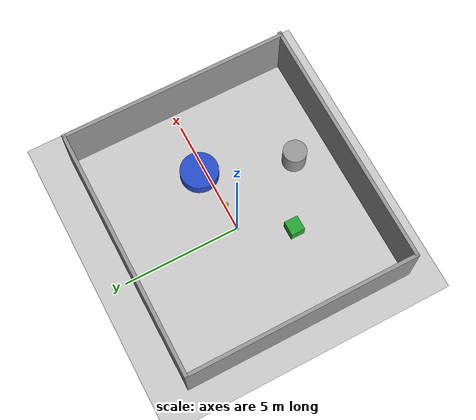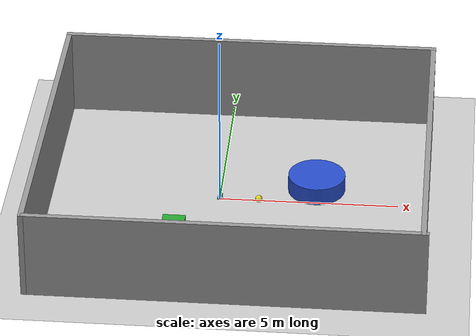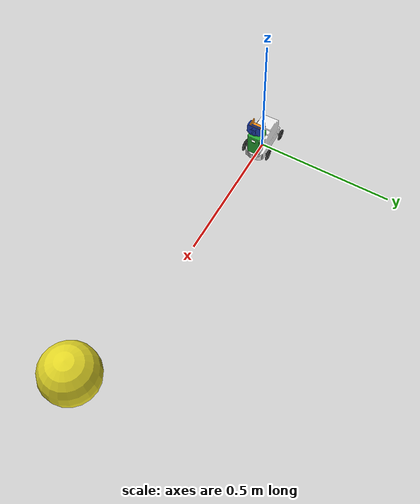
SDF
<sdf version="1.7">
 <world name="default">
  <light name="sun" type="directional">
   <pose>0 0 10 0 -0 0</pose>
   <diffuse>0.8 0.8 0.8 1</diffuse>
   <specular>0.2 0.2 0.2 1</specular>
   <attenuation>
    <range>1000</range>
    <constant>0.9</constant>
    <linear>0.01</linear>
    <quadratic>0.001</quadratic>
   </attenuation>
   <direction>-0.5 0.1 -0.9</direction>
   <spot><inner_angle>0</inner_angle><outer_angle>0</outer_angle><falloff>0</falloff></spot>
  </light>
  <model name="ground_plane">
   <static>1</static>
   <link name="link">
    <collision name="collision">
     <geometry><plane><normal>0 0 1</normal><size>100 100</size></plane></geometry>
     <surface><friction><ode><mu>100</mu><mu2>50</mu2></ode></friction></surface>
    </collision>
    <visual name="visual">
     <cast_shadows>0</cast_shadows>
     <geometry><plane><normal>0 0 1</normal><size>100 100</size></plane></geometry>
     <material>
      <script><uri>file://media/materials/scripts/gazebo.material</uri><name>Gazebo/Grey</name></script>
     </material>
    </visual>
   </link>
  </model>
  <gravity>0 0 -9.8</gravity>
  <magnetic_field>6e-06 2.3e-05 -4.2e-05</magnetic_field>
  <atmosphere type="adiabatic"/>
  <physics type="ode">
   <max_step_size>0.001</max_step_size>
   <real_time_factor>1</real_time_factor>
   <real_time_update_rate>1000</real_time_update_rate>
  </physics>
  <scene><ambient>0.4 0.4 0.4 1</ambient><background>0.7 0.7 0.7 1</background><shadows>1</shadows></scene>
  <audio><device>default</device></audio>
  <spherical_coordinates>
   <surface_model>EARTH_WGS84</surface_model>
   <latitude_deg>0</latitude_deg>
   <longitude_deg>0</longitude_deg>
   <elevation>0</elevation>
   <heading_deg>0</heading_deg>
  </spherical_coordinates>
  <model name="minihouse">
   <pose>0.521714 -0.22273 0 0 -0 0</pose>
   <link name="Wall_14">
    <collision name="Wall_14_Collision">
     <geometry><box><size>10.75 0.15 2.5</size></box></geometry>
     <pose>0 0 1.25 0 -0 0</pose>
    </collision>
    <visual name="Wall_14_Visual">
     <pose>0 0 1.25 0 -0 0</pose>
     <geometry><box><size>10.75 0.15 2.5</size></box></geometry>
     <material>
      <script><uri>file://media/materials/scripts/gazebo.material</uri><name>Gazebo/Grey</name></script>
      <ambient>1 1 1 1</ambient>
     </material>
     <meta><layer>0</layer></meta>
    </visual>
    <pose>-0.035378 4.84484 0 0 -0 0</pose>
   </link>
   <link name="Wall_17">
    <collision name="Wall_17_Collision">
     <geometry><box><size>9.83968 0.15 2.5</size></box></geometry>
     <pose>0 0 1.25 0 -0 0</pose>
    </collision>
    <visual name="Wall_17_Visual">
     <pose>0 0 1.25 0 -0 0</pose>
     <geometry><box><size>9.83968 0.15 2.5</size></box></geometry>
     <material>
      <script><uri>file://media/materials/scripts/gazebo.material</uri><name>Gazebo/Grey</name></script>
      <ambient>1 1 1 1</ambient>
     </material>
     <meta><layer>0</layer></meta>
    </visual>
    <pose>5.26462 0 0 0 -0 -1.5708</pose>
   </link>
   <link name="Wall_18">
    <collision name="Wall_18_Collision">
     <geometry><box><size>10.75 0.15 2.5</size></box></geometry>
     <pose>0 0 1.25 0 -0 0</pose>
    </collision>
    <visual name="Wall_18_Visual">
     <pose>0 0 1.25 0 -0 0</pose>
     <geometry><box><size>10.75 0.15 2.5</size></box></geometry>
     <material>
      <script><uri>file://media/materials/scripts/gazebo.material</uri><name>Gazebo/Grey</name></script>
      <ambient>1 1 1 1</ambient>
     </material>
     <meta><layer>0</layer></meta>
    </visual>
    <pose>0.035379 -4.84484 0 0 -0 3.14159</pose>
   </link>
   <link name="Wall_19">
    <collision name="Wall_19_Collision">
     <geometry><box><size>9.83968 0.15 2.5</size></box></geometry>
     <pose>0 0 1.25 0 -0 0</pose>
    </collision>
    <visual name="Wall_19_Visual">
     <pose>0 0 1.25 0 -0 0</pose>
     <geometry><box><size>9.83968 0.15 2.5</size></box></geometry>
     <material>
      <script><uri>file://media/materials/scripts/gazebo.material</uri><name>Gazebo/Grey</name></script>
      <ambient>1 1 1 1</ambient>
     </material>
     <meta><layer>0</layer></meta>
    </visual>
    <pose>-5.33538 0 0 0 -0 1.5708</pose>
   </link>
   <static>1</static>
  </model>
  <model name="unit_cylinder">
   <pose>1.54016 -3.46963 0.499998 3e-06 4e-06 -0</pose>
   <link name="link">
    <inertial>
     <mass>1</mass>
     <inertia><ixx>0.145833</ixx><ixy>0</ixy><ixz>0</ixz><iyy>0.145833</iyy><iyz>0</iyz><izz>0.125</izz></inertia>
    </inertial>
    <collision name="collision">
     <geometry><cylinder><radius>0.5</radius><length>1</length></cylinder></geometry>
    </collision>
    <visual name="visual">
     <geometry><cylinder><radius>0.5</radius><length>1</length></cylinder></geometry>
     <material>
      <script><name>Gazebo/Grey</name><uri>file://media/materials/scripts/gazebo.material</uri></script>
     </material>
    </visual>
   </link>
  </model>
  <model name="jetbot">
   <link name="base_link">
    <inertial>
     <pose>-0.006525 0.000838 0.022571 0 -0 0</pose>
     <mass>1</mass>
     <inertia>
      <ixx>0.034058</ixx>
      <ixy>0</ixy>
      <ixz>0</ixz>
      <iyy>0.071921</iyy>
      <iyz>0</iyz>
      <izz>0.072689</izz>
     </inertia>
    </inertial>
    <collision name="base_link_collision">
     <geometry><mesh><scale>1 1 1</scale><uri>model://modelo_robot/meshes/chassis.STL</uri></mesh></geometry>
     <surface>
      <contact><ode><kp>100000</kp><kd>1</kd></ode></contact>
      <friction><ode><mu>200</mu><mu2>200</mu2></ode></friction>
     </surface>
    </collision>
    <visual name="base_link_visual">
     <geometry><mesh><scale>1 1 1</scale><uri>model://modelo_robot/meshes/chassis.STL</uri></mesh></geometry>
     <material>
      <script><name>Gazebo/White</name><uri>file://media/materials/scripts/gazebo.material</uri></script>
     </material>
    </visual>
   </link>
   <joint name="der_atras_joint" type="revolute">
    <pose relative_to="base_link">-0.052704 -0.046801 -0.015 1.5708 -0 0</pose>
    <parent>base_link</parent>
    <child>der_atras_link</child>
    <axis>
     <xyz>0 0 1</xyz>
     <limit><effort>100</effort><velocity>100</velocity><lower>-1e+16</lower><upper>1e+16</upper></limit>
     <dynamics>
      <damping>0.1</damping>
      <friction>0.1</friction>
      <spring_reference>0</spring_reference>
      <spring_stiffness>0</spring_stiffness>
     </dynamics>
    </axis>
   </joint>
   <link name="der_atras_link">
    <pose relative_to="der_atras_joint">0 0 0 0 -0 0</pose>
    <inertial>
     <mass>0.15591</mass>
     <inertia><ixx>0.7966</ixx><ixy>0</ixy><ixz>0</ixz><iyy>0.40074</iyy><iyz>0</iyz><izz>0.40074</izz></inertia>
    </inertial>
    <collision name="der_atras_link_collision">
     <geometry>
      <mesh><scale>1 1 1</scale><uri>model://modelo_robot/meshes/der_atras_link.STL</uri></mesh>
     </geometry>
     <surface>
      <contact><ode><kp>1e+06</kp><kd>1</kd></ode></contact>
      <friction><ode><mu>200</mu><mu2>200</mu2></ode></friction>
     </surface>
    </collision>
    <visual name="der_atras_link_visual">
     <pose>0.1033 0 0 0 -0 0</pose>
     <geometry>
      <mesh><scale>1 1 1</scale><uri>model://modelo_robot/meshes/der_atras_link.STL</uri></mesh>
     </geometry>
     <material>
      <script><name>Gazebo/Black</name><uri>file://media/materials/scripts/gazebo.material</uri></script>
     </material>
    </visual>
   </link>
   <joint name="der_del_joint" type="revolute">
    <pose relative_to="base_link">0.050556 -0.046806 -0.015 1.5708 -0 0</pose>
    <parent>base_link</parent>
    <child>izq_del_link</child>
    <axis>
     <xyz>0 0 1</xyz>
     <limit><effort>100</effort><velocity>100</velocity><lower>-1e+16</lower><upper>1e+16</upper></limit>
     <dynamics>
      <damping>0.1</damping>
      <friction>0.1</friction>
      <spring_reference>0</spring_reference>
      <spring_stiffness>0</spring_stiffness>
     </dynamics>
    </axis>
   </joint>
   <link name="izq_del_link">
    <pose relative_to="der_del_joint">0 0 0 0 -0 0</pose>
    <inertial>
     <pose>-2.7756 6.9389 2.4896 0 -0 0</pose>
     <mass>0.15156</mass>
     <inertia><ixx>0.5053</ixx><ixy>0</ixy><ixz>0</ixz><iyy>0.5053</iyy><iyz>0</iyz><izz>0.98323</izz></inertia>
    </inertial>
    <collision name="izq_del_link_collision">
     <geometry><mesh><scale>1 1 1</scale><uri>model://modelo_robot/meshes/izq_del_link.STL</uri></mesh></geometry>
     <surface>
      <contact><ode><kp>100000</kp><kd>1</kd></ode></contact>
      <friction><ode><mu>200</mu><mu2>200</mu2></ode></friction>
     </surface>
    </collision>
    <visual name="izq_del_link_visual">
     <geometry><mesh><scale>1 1 1</scale><uri>model://modelo_robot/meshes/izq_del_link.STL</uri></mesh></geometry>
     <material>
      <script><name>Gazebo/Black</name><uri>file://media/materials/scripts/gazebo.material</uri></script>
     </material>
    </visual>
   </link>
   <joint name="izq_atras_joint" type="revolute">
    <pose relative_to="base_link">-0.052704 0.047799 -0.015 1.5707 -0 0</pose>
    <parent>base_link</parent>
    <child>izq_atras_link</child>
    <axis>
     <xyz>0 0 1</xyz>
     <limit><effort>100</effort><velocity>100</velocity><lower>-1e+16</lower><upper>1e+16</upper></limit>
     <dynamics>
      <damping>0.1</damping>
      <friction>0.1</friction>
      <spring_reference>0</spring_reference>
      <spring_stiffness>0</spring_stiffness>
     </dynamics>
    </axis>
   </joint>
   <link name="izq_atras_link">
    <pose relative_to="izq_atras_joint">0 0 0 0 -0 0</pose>
    <inertial>
     <mass>0.15591</mass>
     <inertia><ixx>0.7966</ixx><ixy>0</ixy><ixz>0</ixz><iyy>0.40074</iyy><iyz>0</iyz><izz>0.40074</izz></inertia>
    </inertial>
    <collision name="izq_atras_link_collision">
     <geometry>
      <mesh><scale>1 1 1</scale><uri>model://modelo_robot/meshes/izq_atras_link.STL</uri></mesh>
     </geometry>
     <surface>
      <contact><ode><kp>100000</kp><kd>1</kd></ode></contact>
      <friction><ode><mu>200</mu><mu2>200</mu2></ode></friction>
     </surface>
    </collision>
    <visual name="izq_atras_link_visual">
     <pose>0.10338 0 0.0946 0 -0 0</pose>
     <geometry>
      <mesh><scale>1 1 1</scale><uri>model://modelo_robot/meshes/izq_atras_link.STL</uri></mesh>
     </geometry>
     <material>
      <script><name>Gazebo/Black</name><uri>file://media/materials/scripts/gazebo.material</uri></script>
     </material>
    </visual>
   </link>
   <joint name="izq_del_joint" type="revolute">
    <pose relative_to="base_link">0.050556 0.047804 -0.015 1.5708 -0 0</pose>
    <parent>base_link</parent>
    <child>der_del_link</child>
    <axis>
     <xyz>0 0 1</xyz>
     <limit><effort>100</effort><velocity>100</velocity><lower>-1e+16</lower><upper>1e+16</upper></limit>
     <dynamics>
      <damping>0.1</damping>
      <friction>0.1</friction>
      <spring_reference>0</spring_reference>
      <spring_stiffness>0</spring_stiffness>
     </dynamics>
    </axis>
   </joint>
   <link name="der_del_link">
    <pose relative_to="izq_del_joint">0 0 0 0 -0 0</pose>
    <inertial>
     <pose>2.0817 -1.0408 -2.4896 0 -0 0</pose>
     <mass>0.1156</mass>
     <inertia><ixx>0.5053</ixx><ixy>0</ixy><ixz>0</ixz><iyy>0.5053</iyy><iyz>0</iyz><izz>0.98323</izz></inertia>
    </inertial>
    <collision name="der_del_link_collision">
     <geometry><mesh><scale>1 1 1</scale><uri>model://modelo_robot/meshes/der_del_link.STL</uri></mesh></geometry>
     <surface>
      <contact><ode><kp>1e+06</kp><kd>1</kd></ode></contact>
      <friction><ode><mu>200</mu><mu2>200</mu2></ode></friction>
     </surface>
    </collision>
    <visual name="der_del_link_visual">
     <geometry><mesh><scale>1 1 1</scale><uri>model://modelo_robot/meshes/der_del_link.STL</uri></mesh></geometry>
     <material>
      <script><name>Gazebo/Black</name><uri>file://media/materials/scripts/gazebo.material</uri></script>
     </material>
    </visual>
   </link>
   <joint name="prisma_joint" type="prismatic">
    <pose relative_to="base_link">0.067648 0 0.013 0 0 -3.14159</pose>
    <parent>base_link</parent>
    <child>prisma_link</child>
    <axis>
     <xyz>0 0 1</xyz>
     <limit><lower>0</lower><upper>0.025</upper><effort>100</effort><velocity>100</velocity></limit>
     <dynamics>
      <damping>10</damping>
      <friction>10</friction>
      <spring_reference>0</spring_reference>
      <spring_stiffness>0</spring_stiffness>
     </dynamics>
    </axis>
   </joint>
   <link name="prisma_link">
    <pose relative_to="prisma_joint">0 0 0 0 -0 0</pose>
    <inertial>
     <pose>0.003533 0 0.049545 0 -0 0</pose>
     <mass>0.65139</mass>
     <inertia><ixx>0.44437</ixx><ixy>0</ixy><ixz>0</ixz><iyy>0.43876</iyy><iyz>0</iyz><izz>0.14329</izz></inertia>
    </inertial>
    <collision name="prisma_link_collision">
     <geometry><mesh><scale>1 1 1</scale><uri>model://modelo_robot/meshes/prisma_link.STL</uri></mesh></geometry>
     <surface>
      <contact><ode><kp>100000</kp><kd>1</kd></ode></contact>
      <friction><ode><mu>200</mu><mu2>200</mu2></ode></friction>
     </surface>
    </collision>
    <visual name="prisma_link_visual">
     <pose>0 0 -0.035 0 -0 0</pose>
     <geometry><mesh><scale>1 1 1</scale><uri>model://modelo_robot/meshes/prisma_link.STL</uri></mesh></geometry>
     <material>
      <script><name>Gazebo/Green</name><uri>file://media/materials/scripts/gazebo.material</uri></script>
     </material>
    </visual>
   </link>
   <joint name="base_cam_joint" type="revolute">
    <pose relative_to="prisma_link">0.0125 0 0.1 0 -0 0.08</pose>
    <parent>prisma_link</parent>
    <child>base_cam_link</child>
    <axis>
     <xyz>0 0 1</xyz>
     <limit><lower>-1.5</lower><upper>1.5</upper><effort>100</effort><velocity>100</velocity></limit>
     <dynamics>
      <damping>0.1</damping>
      <friction>0.1</friction>
      <spring_reference>0</spring_reference>
      <spring_stiffness>0</spring_stiffness>
     </dynamics>
    </axis>
   </joint>
   <link name="base_cam_link">
    <pose relative_to="base_cam_joint">0 0 0 0 -0 0</pose>
    <inertial>
     <pose>0 -0 0.004984 0 -0 0</pose>
     <mass>0.4</mass>
     <inertia><ixx>0.32552</ixx><ixy>0</ixy><ixz>0</ixz><iyy>0.17362</iyy><iyz>0</iyz><izz>0.39268</izz></inertia>
    </inertial>
    <collision name="base_cam_link_collision">
     <geometry><mesh><scale>1 1 1</scale><uri>model://modelo_robot/meshes/base_cam_link.STL</uri></mesh></geometry>
     <surface>
      <contact><ode><kp>100000</kp><kd>1</kd></ode></contact>
      <friction><ode><mu>200</mu><mu2>200</mu2></ode></friction>
     </surface>
    </collision>
    <visual name="base_cam_link_visual">
     <pose>0 0 0 0 -0 0.25</pose>
     <geometry><mesh><scale>1 1 1</scale><uri>model://modelo_robot/meshes/base_cam_link.STL</uri></mesh></geometry>
     <material>
      <script><name>Gazebo/Orange</name><uri>file://media/materials/scripts/gazebo.material</uri></script>
     </material>
    </visual>
   </link>
   <joint name="cam_joint" type="revolute">
    <pose relative_to="base_cam_link">0 0 0.01 7e-06 -7e-06 2.99159</pose>
    <parent>base_cam_link</parent>
    <child>cam_link</child>
    <axis>
     <xyz>0 1 0</xyz>
     <limit><lower>-0.5</lower><upper>0.4</upper><effort>100</effort><velocity>100</velocity></limit>
     <dynamics>
      <damping>0.1</damping>
      <friction>0.1</friction>
      <spring_reference>0</spring_reference>
      <spring_stiffness>0</spring_stiffness>
     </dynamics>
    </axis>
   </joint>
   <link name="cam_link">
    <pose relative_to="cam_joint">0 0 0 0 -0 0</pose>
    <inertial>
     <pose>-0.014554 -0.00084 -1.4443 0 -0 0</pose>
     <mass>0.357</mass>
     <inertia><ixx>0.51693</ixx><ixy>0</ixy><ixz>0</ixz><iyy>0.60136</iyy><iyz>0</iyz><izz>0.239</izz></inertia>
    </inertial>
    <collision name="cam_link_collision">
     <geometry><mesh><scale>1 1 1</scale><uri>model://modelo_robot/meshes/cam_link.STL</uri></mesh></geometry>
     <surface>
      <contact><ode><kp>100000</kp><kd>1</kd></ode></contact>
      <friction><ode><mu>200</mu><mu2>200</mu2></ode></friction>
     </surface>
    </collision>
    <visual name="cam_link_visual">
     <pose>0.0005 0 0 1.5707 0 -3.08318</pose>
     <geometry><mesh><scale>1 1 1</scale><uri>model://modelo_robot/meshes/cam_link.STL</uri></mesh></geometry>
     <material>
      <script><name>Gazebo/Blue</name><uri>file://media/materials/scripts/gazebo.material</uri></script>
     </material>
    </visual>
    <sensor name="my_camera" type="depth">
     <update_rate>20</update_rate>
     <visualize>1</visualize>
     <camera name="cam">
      <horizontal_fov>1.39626</horizontal_fov>
      <image><width>640</width><height>480</height><format>R8B8G8</format></image>
      <clip><near>0.08</near><far>300</far></clip>
      <noise><type>gaussian</type><mean>0</mean><stddev>0.007</stddev></noise>
     </camera>
     <plugin name="camera_controller" filename="libgazebo_ros_camera.so">
      <frame_name>camera_link_optical</frame_name>
      <min_depth>0.1</min_depth>
      <max_depth>500</max_depth>
     </plugin>
    </sensor>
   </link>
   <plugin name="gazebo_ros_joint_state_publisher" filename="libgazebo_ros_joint_state_publisher.so">
    <update_rate>20</update_rate>
    <joint_name>prisma_joint</joint_name>
    <joint_name>base_cam_joint</joint_name>
    <joint_name>cam_joint</joint_name>
    <joint_name>der_del_joint</joint_name>
    <joint_name>izq_del_joint</joint_name>
    <joint_name>izq_atras_joint</joint_name>
    <joint_name>der_atras_joint</joint_name>
   </plugin>
   <plugin name="gazebo_ros_joint_pose_trajectory" filename="libgazebo_ros_joint_pose_trajectory.so">
    <update_rate>2</update_rate>
   </plugin>
   <plugin name="gazebo_ros_control" filename="libgazebo_ros_control.so">
    <robotNamespace>/</robotNamespace>
    <controlPeriod>0.001</controlPeriod>
    <legacyModeNS>0</legacyModeNS>
   </plugin>
   <static>0</static>
   <plugin name="two_wheeled_robot_diff_drive" filename="libgazebo_ros_diff_drive.so">
    <num_wheel_pairs>2</num_wheel_pairs>
    <left_joint>izq_del_joint</left_joint>
    <right_joint>der_del_joint</right_joint>
    <left_joint>izq_atras_joint</left_joint>
    <right_joint>der_atras_joint</right_joint>
    <wheel_separation>0.087</wheel_separation>
    <wheel_separation>0.087</wheel_separation>
    <wheel_diameter>0.04</wheel_diameter>
    <wheel_diameter>0.04</wheel_diameter>
    <max_wheel_torque>20</max_wheel_torque>
    <max_wheel_acceleration>1.0</max_wheel_acceleration>
    <publish_odom>1</publish_odom>
    <publish_odom_tf>1</publish_odom_tf>
    <publish_wheel_tf>1</publish_wheel_tf>
    <odometryTopic>odom</odometryTopic>
    <robot_base_frame>base_link</robot_base_frame>
    <odometryFrame>odom</odometryFrame>
    <commandTopic>cmd_vel</commandTopic>
   </plugin>
   <pose>-0.003706 -0.001627 0.036149 0.0006 -0.008403 0.023142</pose>
  </model>
  <model name="unit_sphere">
   <link name="link">
    <inertial>
     <mass>1</mass>
     <inertia><ixx>0.1</ixx><ixy>0</ixy><ixz>0</ixz><iyy>0.1</iyy><iyz>0</iyz><izz>0.1</izz></inertia>
    </inertial>
    <visual name="visual">
     <geometry><sphere><radius>0.1</radius></sphere></geometry>
     <material>
      <script><name>Gazebo/Yellow</name><uri>file://media/materials/scripts/gazebo.material</uri></script>
      <shader type="pixel"><normal_map>__default__</normal_map></shader>
      <ambient>1 1 0 1</ambient>
      <diffuse>1 1 0 1</diffuse>
      <emissive>0 0 0 1</emissive>
     </material>
    </visual>
    <collision name="collision">
     <geometry><sphere><radius>0.1</radius></sphere></geometry>
     <surface>
      <friction>
       <ode><mu>1</mu><mu2>1</mu2><fdir1>0 0 0</fdir1><slip1>0</slip1><slip2>0</slip2></ode>
       <torsional>
        <coefficient>1</coefficient>
        <patch_radius>0</patch_radius>
        <surface_radius>0</surface_radius>
        <use_patch_radius>1</use_patch_radius>
        <ode><slip>0</slip></ode>
       </torsional>
      </friction>
      <bounce><restitution_coefficient>0</restitution_coefficient><threshold>1e+06</threshold></bounce>
      <contact>
       <collide_without_contact>0</collide_without_contact>
       <collide_without_contact_bitmask>1</collide_without_contact_bitmask>
       <collide_bitmask>1</collide_bitmask>
       <ode>
        <soft_cfm>0</soft_cfm>
        <soft_erp>0.2</soft_erp>
        <kp>1e+13</kp>
        <kd>1</kd>
        <max_vel>0.01</max_vel>
        <min_depth>0</min_depth>
       </ode>
       <bullet>
        <split_impulse>1</split_impulse>
        <split_impulse_penetration_threshold>-0.01</split_impulse_penetration_threshold>
        <soft_cfm>0</soft_cfm>
        <soft_erp>0.2</soft_erp>
        <kp>1e+13</kp>
        <kd>1</kd>
       </bullet>
      </contact>
     </surface>
    </collision>
   </link>
   <static>0</static>
   <pose>1.0997 -0.066146 0.1 0 -0 0</pose>
  </model>
  <model name="unit_box">
   <link name="link">
    <inertial>
     <mass>1</mass>
     <inertia>
      <ixx>0.166667</ixx>
      <ixy>0</ixy>
      <ixz>0</ixz>
      <iyy>0.166667</iyy>
      <iyz>0</iyz>
      <izz>0.166667</izz>
     </inertia>
    </inertial>
    <visual name="visual">
     <geometry><box><size>0.63058 0.594016 0.514568</size></box></geometry>
     <material>
      <script><name>Gazebo/Green</name><uri>file://media/materials/scripts/gazebo.material</uri></script>
      <shader type="pixel"><normal_map>__default__</normal_map></shader>
      <ambient>0 1 0 1</ambient>
      <diffuse>0 1 0 1</diffuse>
      <specular>0.1 0.1 0.1 1</specular>
      <emissive>0 0 0 1</emissive>
     </material>
    </visual>
    <collision name="collision">
     <geometry><box><size>0.63058 0.594016 0.514568</size></box></geometry>
     <surface>
      <friction>
       <ode><mu>1</mu><mu2>1</mu2><fdir1>0 0 0</fdir1><slip1>0</slip1><slip2>0</slip2></ode>
       <torsional>
        <coefficient>1</coefficient>
        <patch_radius>0</patch_radius>
        <surface_radius>0</surface_radius>
        <use_patch_radius>1</use_patch_radius>
        <ode><slip>0</slip></ode>
       </torsional>
      </friction>
      <bounce><restitution_coefficient>0</restitution_coefficient><threshold>1e+06</threshold></bounce>
      <contact>
       <collide_without_contact>0</collide_without_contact>
       <collide_without_contact_bitmask>1</collide_without_contact_bitmask>
       <collide_bitmask>1</collide_bitmask>
       <ode>
        <soft_cfm>0</soft_cfm>
        <soft_erp>0.2</soft_erp>
        <kp>1e+13</kp>
        <kd>1</kd>
        <max_vel>0.01</max_vel>
        <min_depth>0</min_depth>
       </ode>
       <bullet>
        <split_impulse>1</split_impulse>
        <split_impulse_penetration_threshold>-0.01</split_impulse_penetration_threshold>
        <soft_cfm>0</soft_cfm>
        <soft_erp>0.2</soft_erp>
        <kp>1e+13</kp>
        <kd>1</kd>
       </bullet>
      </contact>
     </surface>
    </collision>
   </link>
   <static>0</static>
   <pose>-1.11316 -2.00602 0.257284 0 -0 0</pose>
  </model>
  <model name="unit_cylinder_0">
   <link name="link">
    <inertial>
     <mass>1</mass>
     <inertia><ixx>0.145833</ixx><ixy>0</ixy><ixz>0</ixz><iyy>0.145833</iyy><iyz>0</iyz><izz>0.125</izz></inertia>
    </inertial>
    <visual name="visual">
     <geometry><cylinder><radius>0.8</radius><length>0.5</length></cylinder></geometry>
     <material>
      <script><name>Gazebo/Blue</name><uri>file://media/materials/scripts/gazebo.material</uri></script>
      <shader type="pixel"><normal_map>__default__</normal_map></shader>
      <ambient>0 0.255 1 1</ambient>
      <diffuse>0 0 0 1</diffuse>
      <specular>0 0 0 1</specular>
      <emissive>0 0 0 1</emissive>
     </material>
    </visual>
    <collision name="collision">
     <geometry><cylinder><radius>0.8</radius><length>0.5</length></cylinder></geometry>
     <surface>
      <friction>
       <ode><mu>1</mu><mu2>1</mu2><fdir1>0 0 0</fdir1><slip1>0</slip1><slip2>0</slip2></ode>
       <torsional>
        <coefficient>1</coefficient>
        <patch_radius>0</patch_radius>
        <surface_radius>0</surface_radius>
        <use_patch_radius>1</use_patch_radius>
        <ode><slip>0</slip></ode>
       </torsional>
      </friction>
      <bounce><restitution_coefficient>0</restitution_coefficient><threshold>1e+06</threshold></bounce>
      <contact>
       <collide_without_contact>0</collide_without_contact>
       <collide_without_contact_bitmask>1</collide_without_contact_bitmask>
       <collide_bitmask>1</collide_bitmask>
       <ode>
        <soft_cfm>0</soft_cfm>
        <soft_erp>0.2</soft_erp>
        <kp>1e+13</kp>
        <kd>1</kd>
        <max_vel>0.01</max_vel>
        <min_depth>0</min_depth>
       </ode>
       <bullet>
        <split_impulse>1</split_impulse>
        <split_impulse_penetration_threshold>-0.01</split_impulse_penetration_threshold>
        <soft_cfm>0</soft_cfm>
        <soft_erp>0.2</soft_erp>
        <kp>1e+13</kp>
        <kd>1</kd>
       </bullet>
      </contact>
     </surface>
    </collision>
   </link>
   <static>0</static>
   <pose>2.70016 0.311412 0.5 0 -0 0</pose>
  </model>
 </world>
</sdf>
